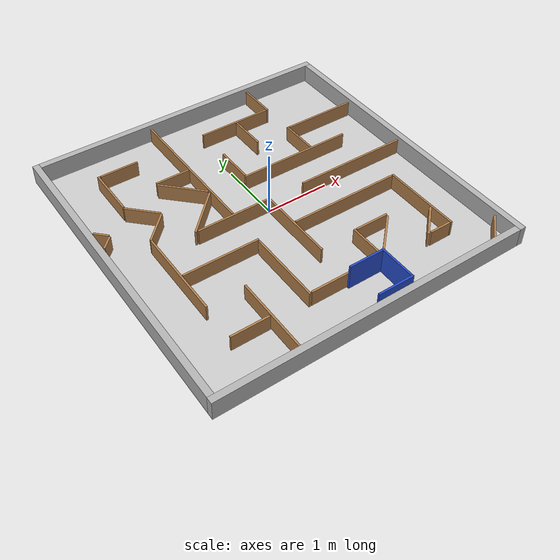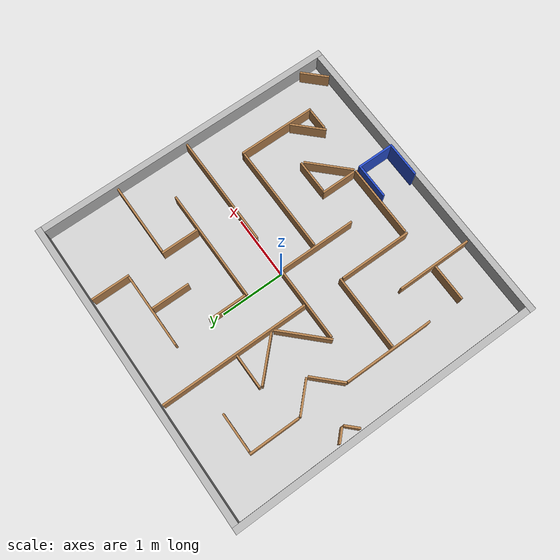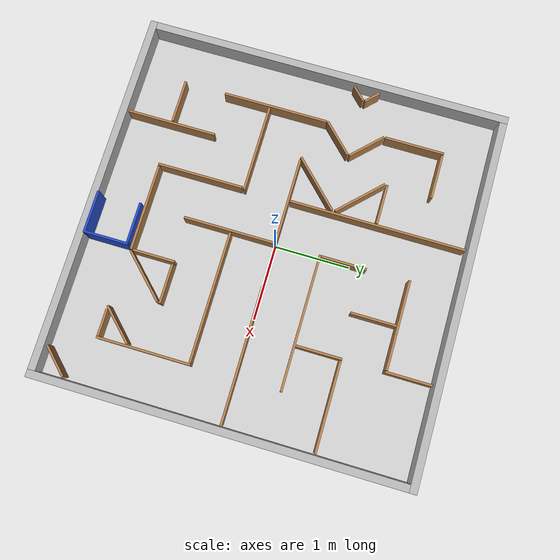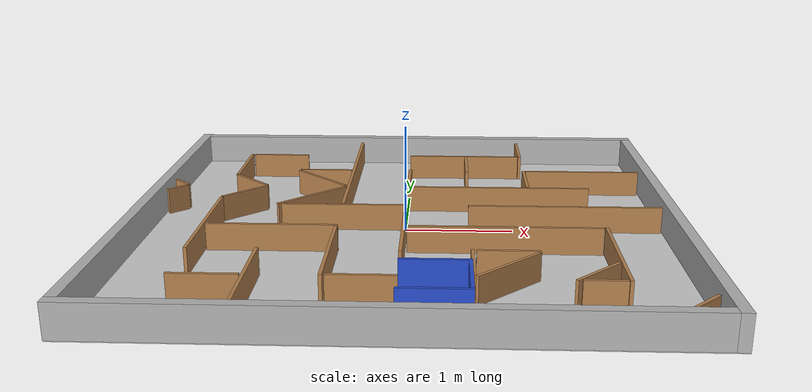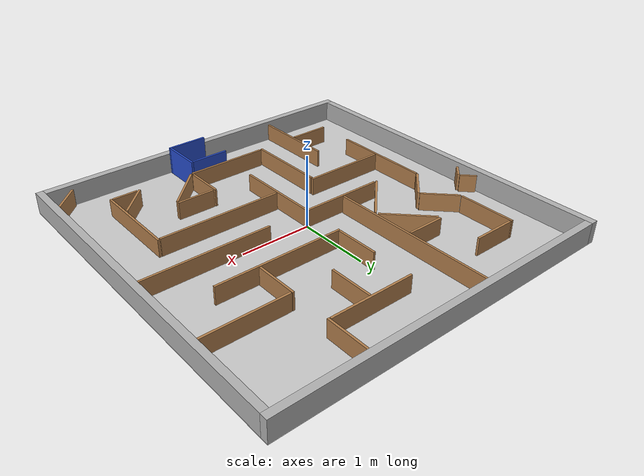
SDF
<sdf version="1.6">
 <world name="default">
  <light name="sun" type="directional">
   <pose>0 0 10 0 -0 0</pose>
   <diffuse>0.8 0.8 0.8 1</diffuse>
   <specular>0.2 0.2 0.2 1</specular>
   <attenuation>
    <range>1000</range>
    <constant>0.9</constant>
    <linear>0.01</linear>
    <quadratic>0.001</quadratic>
   </attenuation>
   <direction>-0.5 0.1 -0.9</direction>
  </light>
  <gravity>0 0 -9.8</gravity>
  <magnetic_field>6e-06 2.3e-05 -4.2e-05</magnetic_field>
  <atmosphere type="adiabatic"/>
  <physics name="default_physics" default="0" type="ode">
   <max_step_size>0.001</max_step_size>
   <real_time_factor>1</real_time_factor>
   <real_time_update_rate>1000</real_time_update_rate>
  </physics>
  <scene><ambient>0.4 0.4 0.4 1</ambient><background>0.7 0.7 0.7 1</background><shadows>1</shadows></scene>
  <spherical_coordinates>
   <surface_model>EARTH_WGS84</surface_model>
   <latitude_deg>0</latitude_deg>
   <longitude_deg>0</longitude_deg>
   <elevation>0</elevation>
   <heading_deg>0</heading_deg>
  </spherical_coordinates>
  <include><uri>model://arena_walls</uri></include>
  <include><uri>model://task3b</uri></include>
 </world>
</sdf>

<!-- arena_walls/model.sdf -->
<sdf version='1.6'>
  <model name='arena_walls'>
    <pose frame=''>0 0 0.15 0 0 0</pose>
    <link name='Right_Wall'>
      <collision name='Right_Wall_Collision'>
        <geometry>
          <box>
            <size>4.90 0.10 0.3</size>
          </box>
        </geometry>
        <pose frame=''>0 0 0 0 0 0</pose>
      </collision>
      <visual name='Right_Wall_Visual'>
        <pose frame=''>0 0 0 0 0 0</pose>
        <geometry>
          <box>
            <size>4.90 0.10 0.3</size>
          </box>
        </geometry>
        <material>
          <diffuse>0.7 0.7 0.7 1</diffuse>
          <pbr>
            <metal>
              <metalness>0.0</metalness>
              <roughness>0.9</roughness>
            </metal>
          </pbr>
        </material>
      </visual>
      <pose frame=''>0.05 2.45 0 0 0 0</pose>
    </link>
    <link name='Back_Wall'>
      <collision name='Back_Wall_Collision'>
        <geometry>
          <box>
            <size>4.90 0.10 0.3</size>
          </box>
        </geometry>
        <pose frame=''>0 0 0 0 0 0</pose>
      </collision>
      <visual name='Back_Wall_Visual'>
        <pose frame=''>0 0 0 0 0 0</pose>
        <geometry>
          <box>
            <size>4.90 0.10 0.3</size>
          </box>
        </geometry>
        <material>
          <diffuse>0.7 0.7 0.7 1</diffuse>
          <pbr>
            <metal>
              <metalness>0.0</metalness>
              <roughness>0.9</roughness>
            </metal>
          </pbr>
        </material>
      </visual>
      <pose frame=''>-2.45 0.05 0 0 0 1.5708</pose>
    </link>
    <link name='Left_Wall'>
      <collision name='Left_Wall_Collision'>
        <geometry>
          <box>
            <size>4.90 0.10 0.3</size>
          </box>
        </geometry>
        <pose frame=''>0 0 0 0 0 0</pose>
      </collision>
      <visual name='Left_Wall_Visual'>
        <pose frame=''>0 0 0 0 0 0</pose>
        <geometry>
          <box>
            <size>4.90 0.10 0.3</size>
          </box>
        </geometry>
        <material>
          <diffuse>0.7 0.7 0.7 1</diffuse>
          <pbr>
            <metal>
              <metalness>0.0</metalness>
              <roughness>0.9</roughness>
            </metal>
          </pbr>
        </material>
      </visual>
      <pose frame=''>-0.05 -2.45 0 0 0 0</pose>
    </link>
    <link name='Front_Wall'>
      <collision name='Front_Wall_Collision'>
        <geometry>
          <box>
            <size>4.90 0.10 0.3</size>
          </box>
        </geometry>
        <pose frame=''>0 0 0 0 0 0</pose>
      </collision>
      <visual name='Front_Wall_Visual'>
        <pose frame=''>0 0 0 0 0 0</pose>
        <geometry>
          <box>
            <size>4.90 0.10 0.3</size>
          </box>
        </geometry>
        <material>
          <diffuse>0.7 0.7 0.7 1</diffuse>
          <pbr>
            <metal>
              <metalness>0.0</metalness>
              <roughness>0.9</roughness>
            </metal>
          </pbr>
        </material>
      </visual>
      <pose frame=''>2.45 -0.05 0 0 0 1.5708</pose>
    </link>
    <static>1</static>
  </model>
</sdf>

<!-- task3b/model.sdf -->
<sdf version="1.4">
<model name="task3b">
  <static>true</static>
    <link name="floor">
      <collision name="collision">
        <geometry>
          <plane>
            <normal>0 0 1</normal>
            <size>5.0 5.0</size>
          </plane>
        </geometry>
        <surface>
          <friction>
            <ode>
              <mu>100</mu>
              <mu2>50</mu2>
            </ode>
          </friction>
        </surface>
      </collision>
      <visual name="visual">
        <cast_shadows>false</cast_shadows>
        <geometry>
          <plane>
            <normal>0 0 1</normal>
            <size>5.0 5.0</size>
          </plane>
        </geometry>
        <material>
          <script>
            <uri>model://task3b/materials/scripts</uri>
            <uri>model://task3b/materials/textures</uri>
            <name>Task3BFloor/Image</name>
          </script>
        </material>
      </visual>
    </link>
    <link name='start_zone'>
      <pose frame=''>0.293 -2.08583 0.2 0 0 3.142</pose>
      <collision name='Right_Wall_Collision'>
        <geometry>
          <box>
            <size>0.57 0.03 0.4</size>
          </box>
        </geometry>
        <pose frame=''>0 0.2850 0 0 0 0</pose>
      </collision>
      <visual name='Right_Wall_Visual'>
        <pose frame=''>0 0.2850 0 0 0 0</pose>
        <geometry>
          <box>
            <size>0.57 0.03 0.4</size>
          </box>
        </geometry>
        <material>
          <script>
            <uri>file://media/materials/scripts/gazebo.material</uri>
            <name>Gazebo/Blue</name>
          </script>
        </material>
      </visual>
      <collision name='Back_Wall_Collision'>
        <geometry>
          <box>
            <size>0.57 0.03 0.4</size>
          </box>
        </geometry>
        <pose frame=''>-0.27 -0.015 0 0 0 1.571</pose>
      </collision>
      <visual name='Back_Wall_Visual'>
        <pose frame=''>-0.27 -0.015 0 0 0 1.571</pose>
        <geometry>
          <box>
            <size>0.57 0.03 0.4</size>
          </box>
        </geometry>
        <material>
          <script>
            <uri>file://media/materials/scripts/gazebo.material</uri>
            <name>Gazebo/Blue</name>
          </script>
        </material>
      </visual>
      <collision name='Left_Wall_Collision'>
        <geometry>
          <box>
            <size>0.54 0.03 0.4</size>
          </box>
        </geometry>
        <pose frame=''>0.015 -0.285 0 0 0 0</pose>
      </collision>
      <visual name='Left_Wall_Visual'>
        <pose frame=''>0.015 -0.285 0 0 0 0</pose>
        <geometry>
          <box>
            <size>0.54 0.03 0.4</size>
          </box>
        </geometry>
        <material>
          <script>
            <uri>file://media/materials/scripts/gazebo.material</uri>
            <name>Gazebo/Blue</name>
          </script>
        </material>
      </visual>
    </link>
    <link name='wall_1'>
      <pose frame=''>-1.19106 -1.79071 0.125 0 0 0</pose>
      <collision name='coll'>
        <geometry>
          <box>
            <size>0.03 1.20 0.25</size>
          </box>
        </geometry>
      </collision>
      <visual name='vis'>
        <geometry>
          <box>
            <size>0.03 1.20 0.25</size>
          </box>
        </geometry>
        <material>
          <script>
            <uri>file://media/materials/scripts/gazebo.material</uri>
            <name>Gazebo/Wood</name>
          </script>
        </material>
      </visual>
    </link>
    <link name='wall_2'>
      <pose frame=''>-1.50876 -1.78553 0.125 0 0 0</pose>
      <collision name='coll'>
        <geometry>
          <box>
            <size>0.58 0.03 0.25</size>
          </box>
        </geometry>
      </collision>
      <visual name='vis'>
        <geometry>
          <box>
            <size>0.58 0.03 0.25</size>
          </box>
        </geometry>
        <material>
          <script>
            <uri>file://media/materials/scripts/gazebo.material</uri>
            <name>Gazebo/Wood</name>
          </script>
        </material>
      </visual>
    </link>
    <link name='wall_3'>
      <pose frame=''>0.01518 -1.76333 0.125 0 0 0</pose>
      <collision name='coll'>
        <geometry>
          <box>
            <size>1.16 0.03 0.25</size>
          </box>
        </geometry>
      </collision>
      <visual name='vis'>
        <geometry>
          <box>
            <size>1.16 0.03 0.25</size>
          </box>
        </geometry>
        <material>
          <script>
            <uri>file://media/materials/scripts/gazebo.material</uri>
            <name>Gazebo/Wood</name>
          </script>
        </material>
      </visual>
    </link>
    <link name='wall_4'>
      <pose frame=''>-0.59518 -1.20333 0.125 0 0 0</pose>
      <collision name='coll'>
        <geometry>
          <box>
            <size>0.03 1.15 0.25</size>
          </box>
        </geometry>
      </collision>
      <visual name='vis'>
        <geometry>
          <box>
            <size>0.03 1.15 0.25</size>
          </box>
        </geometry>
        <material>
          <script>
            <uri>file://media/materials/scripts/gazebo.material</uri>
            <name>Gazebo/Wood</name>
          </script>
        </material>
      </visual>
    </link>
    <link name='wall_5'>
      <pose frame=''>-1.17018 -0.59518 0.125 0 0 0</pose>
      <collision name='coll'>
        <geometry>
          <box>
            <size>1.18 0.03 0.25</size>
          </box>
        </geometry>
      </collision>
      <visual name='vis'>
        <geometry>
          <box>
            <size>1.18 0.03 0.25</size>
          </box>
        </geometry>
        <material>
          <script>
            <uri>file://media/materials/scripts/gazebo.material</uri>
            <name>Gazebo/Wood</name>
          </script>
        </material>
      </visual>
    </link>
    <link name='wall_6'>
      <pose frame=''>-1.78464 -0.51681 0.125 0 0 0</pose>
      <collision name='coll'>
        <geometry>
          <box>
            <size>0.03 1.42 0.25</size>
          </box>
        </geometry>
      </collision>
      <visual name='vis'>
        <geometry>
          <box>
            <size>0.03 1.42 0.25</size>
          </box>
        </geometry>
        <material>
          <script>
            <uri>file://media/materials/scripts/gazebo.material</uri>
            <name>Gazebo/Wood</name>
          </script>
        </material>
      </visual>
    </link>
    <link name='wall_7'>
      <pose frame=''>-2.28978 0.49954 0.125 0 0 0.786</pose>
      <collision name='coll'>
        <geometry>
          <box>
            <size>0.23 0.03 0.25</size>
          </box>
        </geometry>
      </collision>
      <visual name='vis'>
        <geometry>
          <box>
            <size>0.23 0.03 0.25</size>
          </box>
        </geometry>
        <material>
          <script>
            <uri>file://media/materials/scripts/gazebo.material</uri>
            <name>Gazebo/Wood</name>
          </script>
        </material>
      </visual>
    </link>
    <link name='wall_8'>
      <pose frame=''>-2.28914 0.68578 0.125 0 0 -0.786</pose>
      <collision name='coll'>
        <geometry>
          <box>
            <size>0.23 0.03 0.25</size>
          </box>
        </geometry>
      </collision>
      <visual name='vis'>
        <geometry>
          <box>
            <size>0.23 0.03 0.25</size>
          </box>
        </geometry>
        <material>
          <script>
            <uri>file://media/materials/scripts/gazebo.material</uri>
            <name>Gazebo/Wood</name>
          </script>
        </material>
      </visual>
    </link>
    <link name='wall_9'>
      <pose frame=''>-1.60040 0.39347 0.125 0 0 0.786</pose>
      <collision name='coll'>
        <geometry>
          <box>
            <size>0.53 0.03 0.25</size>
          </box>
        </geometry>
      </collision>
      <visual name='vis'>
        <geometry>
          <box>
            <size>0.53 0.03 0.25</size>
          </box>
        </geometry>
        <material>
          <script>
            <uri>file://media/materials/scripts/gazebo.material</uri>
            <name>Gazebo/Wood</name>
          </script>
        </material>
      </visual>
    </link>
    <link name='wall_10'>
      <pose frame=''>-1.59976 0.79185 0.125 0 0 -0.786</pose>
      <collision name='coll'>
        <geometry>
          <box>
            <size>0.53 0.03 0.25</size>
          </box>
        </geometry>
      </collision>
      <visual name='vis'>
        <geometry>
          <box>
            <size>0.53 0.03 0.25</size>
          </box>
        </geometry>
        <material>
          <script>
            <uri>file://media/materials/scripts/gazebo.material</uri>
            <name>Gazebo/Wood</name>
          </script>
        </material>
      </visual>
    </link>
    <link name='wall_11'>
      <pose frame=''>-1.78464 1.39968 0.125 0 0 0</pose>
      <collision name='coll'>
        <geometry>
          <box>
            <size>0.03 0.8 0.25</size>
          </box>
        </geometry>
      </collision>
      <visual name='vis'>
        <geometry>
          <box>
            <size>0.03 0.8 0.25</size>
          </box>
        </geometry>
        <material>
          <script>
            <uri>file://media/materials/scripts/gazebo.material</uri>
            <name>Gazebo/Wood</name>
          </script>
        </material>
      </visual>
    </link>
    <link name='wall_12'>
      <pose frame=''>-1.45316 1.78468 0.125 0 0 0</pose>
      <collision name='coll'>
        <geometry>
          <box>
            <size>0.60 0.03 0.25</size>
          </box>
        </geometry>
      </collision>
      <visual name='vis'>
        <geometry>
          <box>
            <size>0.60 0.03 0.25</size>
          </box>
        </geometry>
        <material>
          <script>
            <uri>file://media/materials/scripts/gazebo.material</uri>
            <name>Gazebo/Wood</name>
          </script>
        </material>
      </visual>
    </link>
    <link name='wall_13'>
      <pose frame=''>-0.59518 1.20173 0.125 0 0 0</pose>
      <collision name='coll'>
        <geometry>
          <box>
            <size>0.03 2.35 0.25</size>
          </box>
        </geometry>
      </collision>
      <visual name='vis'>
        <geometry>
          <box>
            <size>0.03 2.35 0.25</size>
          </box>
        </geometry>
        <material>
          <script>
            <uri>file://media/materials/scripts/gazebo.material</uri>
            <name>Gazebo/Wood</name>
          </script>
        </material>
      </visual>
    </link>
    <link name='wall_14'>
      <pose frame=''>-0.88788 1.19036 0.125 0 0 0</pose>
      <collision name='coll'>
        <geometry>
          <box>
            <size>0.54 0.03 0.25</size>
          </box>
        </geometry>
      </collision>
      <visual name='vis'>
        <geometry>
          <box>
            <size>0.54 0.03 0.25</size>
          </box>
        </geometry>
        <material>
          <script>
            <uri>file://media/materials/scripts/gazebo.material</uri>
            <name>Gazebo/Wood</name>
          </script>
        </material>
      </visual>
    </link>
    <link name='wall_15'>
      <pose frame=''>-0.89569 0.88963 0.125 0 0 -0.786</pose>
      <collision name='coll'>
        <geometry>
          <box>
            <size>0.75 0.03 0.25</size>
          </box>
        </geometry>
      </collision>
      <visual name='vis'>
        <geometry>
          <box>
            <size>0.75 0.03 0.25</size>
          </box>
        </geometry>
        <material>
          <script>
            <uri>file://media/materials/scripts/gazebo.material</uri>
            <name>Gazebo/Wood</name>
          </script>
        </material>
      </visual>
    </link>
    <link name='wall_16'>
      <pose frame=''>-0.92043 0.29158 0.125 0 0 0.786</pose>
      <collision name='coll'>
        <geometry>
          <box>
            <size>0.82 0.03 0.25</size>
          </box>
        </geometry>
      </collision>
      <visual name='vis'>
        <geometry>
          <box>
            <size>0.82 0.03 0.25</size>
          </box>
        </geometry>
        <material>
          <script>
            <uri>file://media/materials/scripts/gazebo.material</uri>
            <name>Gazebo/Wood</name>
          </script>
        </material>
      </visual>
    </link>
    <link name='wall_17'>
      <pose frame=''>-0.59636 0 0.125 0 0 0</pose>
      <collision name='coll'>
        <geometry>
          <box>
            <size>1.15 0.03 0.25</size>
          </box>
        </geometry>
      </collision>
      <visual name='vis'>
        <geometry>
          <box>
            <size>1.15 0.03 0.25</size>
          </box>
        </geometry>
        <material>
          <script>
            <uri>file://media/materials/scripts/gazebo.material</uri>
            <name>Gazebo/Wood</name>
          </script>
        </material>
      </visual>
    </link>
    <link name='wall_18'>
      <pose frame=''>0 -0.61 0.125 0 0 0</pose>
      <collision name='coll'>
        <geometry>
          <box>
            <size>0.03 1.25 0.25</size>
          </box>
        </geometry>
      </collision>
      <visual name='vis'>
        <geometry>
          <box>
            <size>0.03 1.25 0.25</size>
          </box>
        </geometry>
        <material>
          <script>
            <uri>file://media/materials/scripts/gazebo.material</uri>
            <name>Gazebo/Wood</name>
          </script>
        </material>
      </visual>
    </link>
    <link name='wall_19'>
      <pose frame=''>0.89576 -0.59855 0.125 0 0 0</pose>
      <collision name='coll'>
        <geometry>
          <box>
            <size>1.73 0.03 0.25</size>
          </box>
        </geometry>
      </collision>
      <visual name='vis'>
        <geometry>
          <box>
            <size>1.73 0.03 0.25</size>
          </box>
        </geometry>
        <material>
          <script>
            <uri>file://media/materials/scripts/gazebo.material</uri>
            <name>Gazebo/Wood</name>
          </script>
        </material>
      </visual>
    </link>
    <link name='wall_20'>
      <pose frame=''>1.78553 -1.20355 0.125 0 0 0</pose>
      <collision name='coll'>
        <geometry>
          <box>
            <size>0.03 1.24 0.25</size>
          </box>
        </geometry>
      </collision>
      <visual name='vis'>
        <geometry>
          <box>
            <size>0.03 1.24 0.25</size>
          </box>
        </geometry>
        <material>
          <script>
            <uri>file://media/materials/scripts/gazebo.material</uri>
            <name>Gazebo/Wood</name>
          </script>
        </material>
      </visual>
    </link>
    <link name='wall_21'>
      <pose frame=''>1.59063 -1.80855 0.125 0 0 0</pose>
      <collision name='coll'>
        <geometry>
          <box>
            <size>0.35 0.03 0.25</size>
          </box>
        </geometry>
      </collision>
      <visual name='vis'>
        <geometry>
          <box>
            <size>0.35 0.03 0.25</size>
          </box>
        </geometry>
        <material>
          <script>
            <uri>file://media/materials/scripts/gazebo.material</uri>
            <name>Gazebo/Wood</name>
          </script>
        </material>
      </visual>
    </link>
    <link name='wall_22'>
      <pose frame=''>1.56633 -1.61938 0.125 0 0 0.786</pose>
      <collision name='coll'>
        <geometry>
          <box>
            <size>0.55 0.03 0.25</size>
          </box>
        </geometry>
      </collision>
      <visual name='vis'>
        <geometry>
          <box>
            <size>0.55 0.03 0.25</size>
          </box>
        </geometry>
        <material>
          <script>
            <uri>file://media/materials/scripts/gazebo.material</uri>
            <name>Gazebo/Wood</name>
          </script>
        </material>
      </visual>
    </link>
    <link name='wall_23'>
      <pose frame=''>0.88211 -1.49248 0.125 0 0 0.786</pose>
      <collision name='coll'>
        <geometry>
          <box>
            <size>0.75 0.03 0.25</size>
          </box>
        </geometry>
      </collision>
      <visual name='vis'>
        <geometry>
          <box>
            <size>0.75 0.03 0.25</size>
          </box>
        </geometry>
        <material>
          <script>
            <uri>file://media/materials/scripts/gazebo.material</uri>
            <name>Gazebo/Wood</name>
          </script>
        </material>
      </visual>
    </link>
    <link name='wall_24'>
      <pose frame=''>0.89255 -1.19035 0.125 0 0 0</pose>
      <collision name='coll'>
        <geometry>
          <box>
            <size>0.53 0.03 0.25</size>
          </box>
        </geometry>
      </collision>
      <visual name='vis'>
        <geometry>
          <box>
            <size>0.53 0.03 0.25</size>
          </box>
        </geometry>
        <material>
          <script>
            <uri>file://media/materials/scripts/gazebo.material</uri>
            <name>Gazebo/Wood</name>
          </script>
        </material>
      </visual>
    </link>
    <link name='wall_25'>
      <pose frame=''>0.59518 -1.45535 0.125 0 0 0</pose>
      <collision name='coll'>
        <geometry>
          <box>
            <size>0.03 0.56 0.25</size>
          </box>
        </geometry>
      </collision>
      <visual name='vis'>
        <geometry>
          <box>
            <size>0.03 0.56 0.25</size>
          </box>
        </geometry>
        <material>
          <script>
            <uri>file://media/materials/scripts/gazebo.material</uri>
            <name>Gazebo/Wood</name>
          </script>
        </material>
      </visual>
    </link>
    <link name='wall_26'>
      <pose frame=''>2.21563 -2.21940 0.125 0 0 0.786</pose>
      <collision name='coll'>
        <geometry>
          <box>
            <size>0.45 0.03 0.25</size>
          </box>
        </geometry>
      </collision>
      <visual name='vis'>
        <geometry>
          <box>
            <size>0.45 0.03 0.25</size>
          </box>
        </geometry>
        <material>
          <script>
            <uri>file://media/materials/scripts/gazebo.material</uri>
            <name>Gazebo/Wood</name>
          </script>
        </material>
      </visual>
    </link>
    <link name='wall_27'>
      <pose frame=''>1.48582 0 0.125 0 0 0</pose>
      <collision name='coll'>
        <geometry>
          <box>
            <size>1.8 0.03 0.25</size>
          </box>
        </geometry>
      </collision>
      <visual name='vis'>
        <geometry>
          <box>
            <size>1.8 0.03 0.25</size>
          </box>
        </geometry>
        <material>
          <script>
            <uri>file://media/materials/scripts/gazebo.material</uri>
            <name>Gazebo/Wood</name>
          </script>
        </material>
      </visual>
    </link>
    <link name='wall_28'>
      <pose frame=''>0.88609 0.59518 0.125 0 0 0</pose>
      <collision name='coll'>
        <geometry>
          <box>
            <size>1.8 0.03 0.25</size>
          </box>
        </geometry>
      </collision>
      <visual name='vis'>
        <geometry>
          <box>
            <size>1.8 0.03 0.25</size>
          </box>
        </geometry>
        <material>
          <script>
            <uri>file://media/materials/scripts/gazebo.material</uri>
            <name>Gazebo/Wood</name>
          </script>
        </material>
      </visual>
    </link>
    <link name='wall_29'>
      <pose frame=''>0.00109 0.91744 0.125 0 0 0</pose>
      <collision name='coll'>
        <geometry>
          <box>
            <size>0.03 0.6 0.25</size>
          </box>
        </geometry>
      </collision>
      <visual name='vis'>
        <geometry>
          <box>
            <size>0.03 0.6 0.25</size>
          </box>
        </geometry>
        <material>
          <script>
            <uri>file://media/materials/scripts/gazebo.material</uri>
            <name>Gazebo/Wood</name>
          </script>
        </material>
      </visual>
    </link>
    <link name='wall_30'>
      <pose frame=''>1.18749 0.91744 0.125 0 0 0</pose>
      <collision name='coll'>
        <geometry>
          <box>
            <size>0.03 0.6 0.25</size>
          </box>
        </geometry>
      </collision>
      <visual name='vis'>
        <geometry>
          <box>
            <size>0.03 0.6 0.25</size>
          </box>
        </geometry>
        <material>
          <script>
            <uri>file://media/materials/scripts/gazebo.material</uri>
            <name>Gazebo/Wood</name>
          </script>
        </material>
      </visual>
    </link>
    <link name='wall_31'>
      <pose frame=''>1.79524 1.20244 0.125 0 0 0</pose>
      <collision name='coll'>
        <geometry>
          <box>
            <size>1.17 0.03 0.25</size>
          </box>
        </geometry>
      </collision>
      <visual name='vis'>
        <geometry>
          <box>
            <size>1.17 0.03 0.25</size>
          </box>
        </geometry>
        <material>
          <script>
            <uri>file://media/materials/scripts/gazebo.material</uri>
            <name>Gazebo/Wood</name>
          </script>
        </material>
      </visual>
    </link>
    <link name='wall_32'>
      <pose frame=''>0.59518 1.46708 0.125 0 0 0</pose>
      <collision name='coll'>
        <geometry>
          <box>
            <size>0.03 0.6 0.25</size>
          </box>
        </geometry>
      </collision>
      <visual name='vis'>
        <geometry>
          <box>
            <size>0.03 0.6 0.25</size>
          </box>
        </geometry>
        <material>
          <script>
            <uri>file://media/materials/scripts/gazebo.material</uri>
            <name>Gazebo/Wood</name>
          </script>
        </material>
      </visual>
    </link>
    <link name='wall_33'>
      <pose frame=''>0.57609 1.78553 0.125 0 0 0</pose>
      <collision name='coll'>
        <geometry>
          <box>
            <size>1.18 0.03 0.25</size>
          </box>
        </geometry>
      </collision>
      <visual name='vis'>
        <geometry>
          <box>
            <size>1.18 0.03 0.25</size>
          </box>
        </geometry>
        <material>
          <script>
            <uri>file://media/materials/scripts/gazebo.material</uri>
            <name>Gazebo/Wood</name>
          </script>
        </material>
      </visual>
    </link>
    <link name='wall_34'>
      <pose frame=''>1.18749 2.07553 0.125 0 0 0</pose>
      <collision name='coll'>
        <geometry>
          <box>
            <size>0.03 0.61 0.25</size>
          </box>
        </geometry>
      </collision>
      <visual name='vis'>
        <geometry>
          <box>
            <size>0.03 0.61 0.25</size>
          </box>
        </geometry>
        <material>
          <script>
            <uri>file://media/materials/scripts/gazebo.material</uri>
            <name>Gazebo/Wood</name>
          </script>
        </material>
      </visual>
    </link>
  </model>
</sdf>
